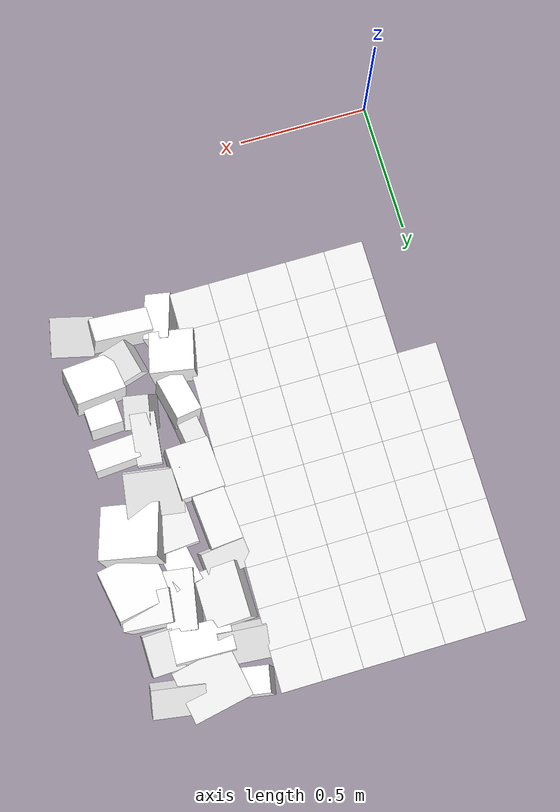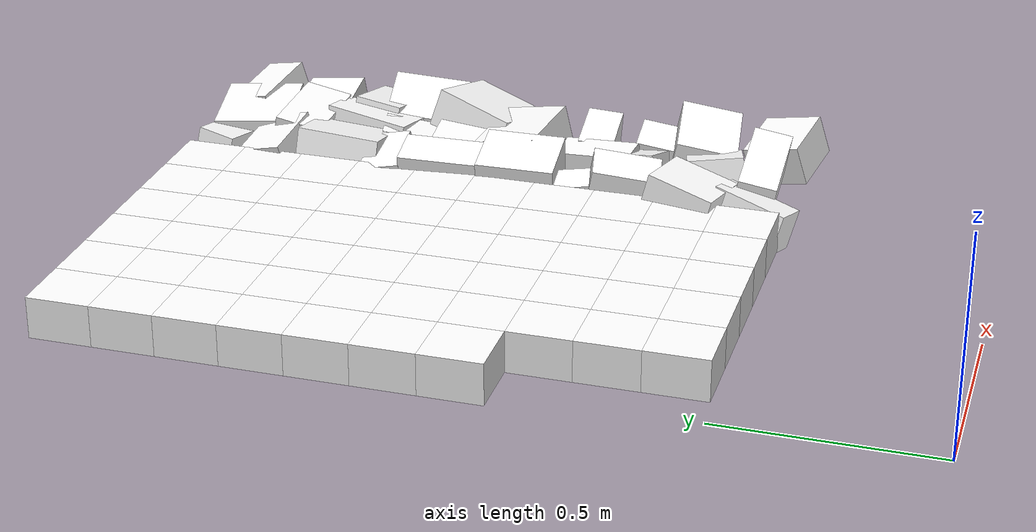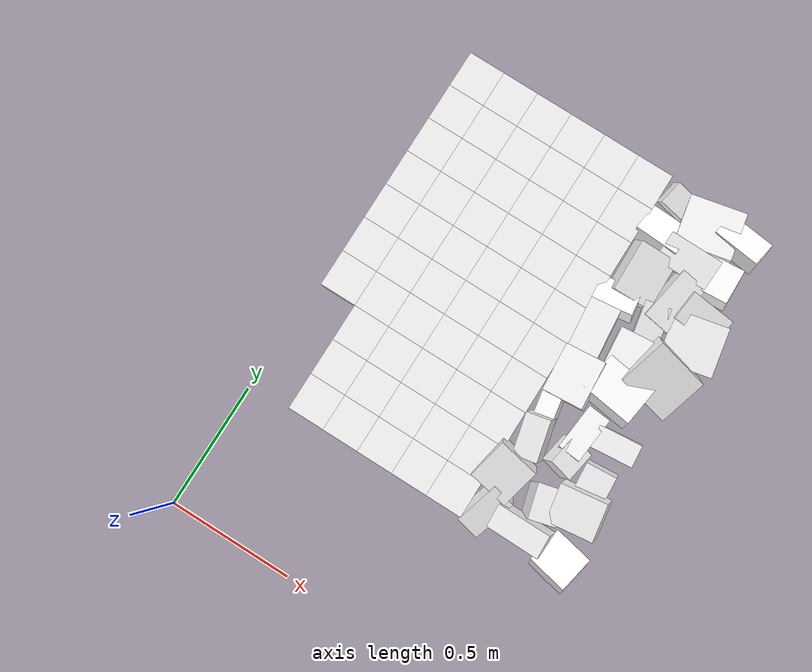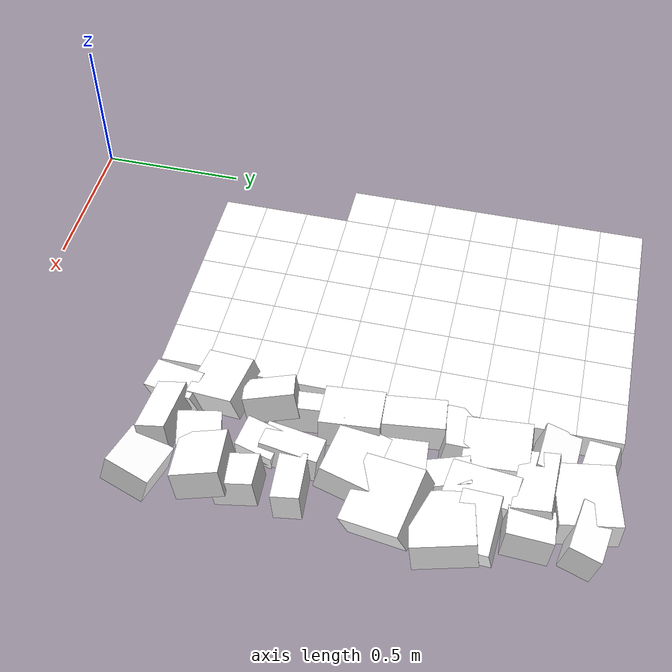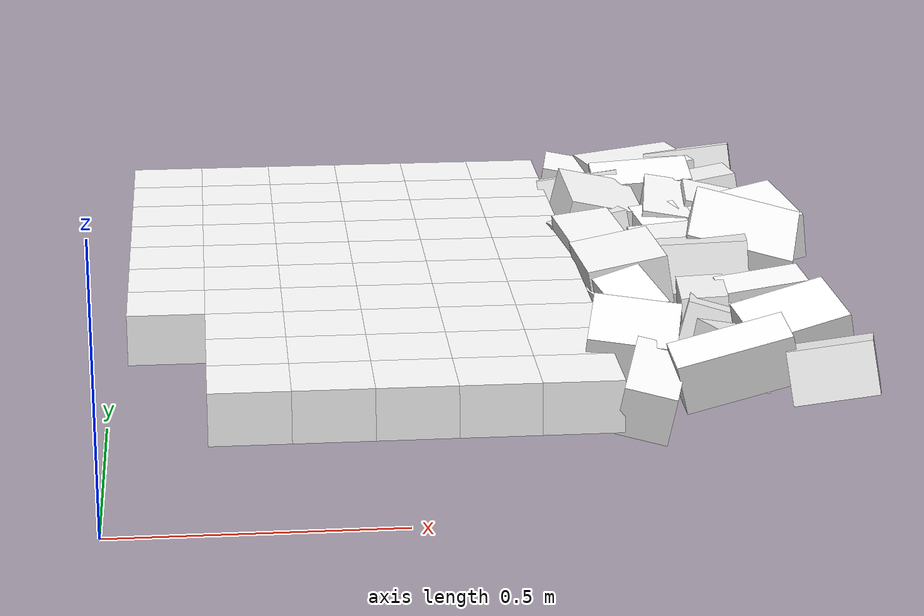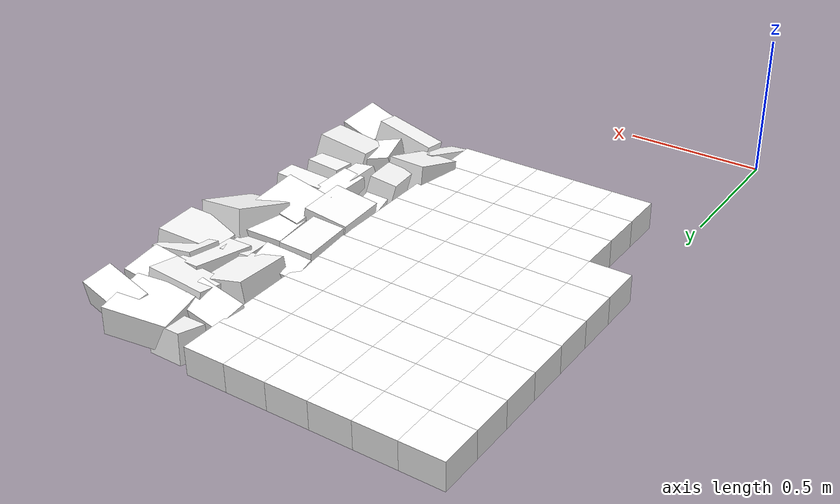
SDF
<sdf version="1.7">
 <world name="default">
  <include><uri>model://sun</uri></include>
  <model name="static_environment">
   <static>true</static>
   <link name="region_15">
    <pose>0.24999999999999956 0.6 0.0 0.0 0.0 0.0</pose>
    <collision name="region_15_collision">
     <geometry><box><size>0.15 0.15 0.1</size></box></geometry>
     <surface><friction><ode><mu>1.0</mu><mu2>1.0</mu2></ode></friction></surface>
    </collision>
    <visual name="region_15_visual">
     <geometry><box><size>0.15 0.15 0.1</size></box></geometry>
     <material><ambient>1.0 1.0 1.0 1.0</ambient><diffuse>1.0 1.0 1.0 1.0</diffuse></material>
    </visual>
   </link>
   <link name="region_16">
    <pose>0.39999999999999947 0.6 0.0 0.0 0.0 0.0</pose>
    <collision name="region_16_collision">
     <geometry><box><size>0.15 0.15 0.1</size></box></geometry>
     <surface><friction><ode><mu>1.0</mu><mu2>1.0</mu2></ode></friction></surface>
    </collision>
    <visual name="region_16_visual">
     <geometry><box><size>0.15 0.15 0.1</size></box></geometry>
     <material><ambient>1.0 1.0 1.0 1.0</ambient><diffuse>1.0 1.0 1.0 1.0</diffuse></material>
    </visual>
   </link>
   <link name="region_17">
    <pose>0.5499999999999994 0.6 0.0 0.0 0.0 0.0</pose>
    <collision name="region_17_collision">
     <geometry><box><size>0.15 0.15 0.1</size></box></geometry>
     <surface><friction><ode><mu>1.0</mu><mu2>1.0</mu2></ode></friction></surface>
    </collision>
    <visual name="region_17_visual">
     <geometry><box><size>0.15 0.15 0.1</size></box></geometry>
     <material><ambient>1.0 1.0 1.0 1.0</ambient><diffuse>1.0 1.0 1.0 1.0</diffuse></material>
    </visual>
   </link>
   <link name="region_18">
    <pose>0.6999999999999993 0.6 0.0 0.0 0.0 0.0</pose>
    <collision name="region_18_collision">
     <geometry><box><size>0.15 0.15 0.1</size></box></geometry>
     <surface><friction><ode><mu>1.0</mu><mu2>1.0</mu2></ode></friction></surface>
    </collision>
    <visual name="region_18_visual">
     <geometry><box><size>0.15 0.15 0.1</size></box></geometry>
     <material><ambient>1.0 1.0 1.0 1.0</ambient><diffuse>1.0 1.0 1.0 1.0</diffuse></material>
    </visual>
   </link>
   <link name="region_19">
    <pose>0.8499999999999992 0.6 0.0 0.0 0.0 0.0</pose>
    <collision name="region_19_collision">
     <geometry><box><size>0.15 0.15 0.1</size></box></geometry>
     <surface><friction><ode><mu>1.0</mu><mu2>1.0</mu2></ode></friction></surface>
    </collision>
    <visual name="region_19_visual">
     <geometry><box><size>0.15 0.15 0.1</size></box></geometry>
     <material><ambient>1.0 1.0 1.0 1.0</ambient><diffuse>1.0 1.0 1.0 1.0</diffuse></material>
    </visual>
   </link>
   <link name="region_35">
    <pose>0.24999999999999956 0.75 0.0 0.0 0.0 0.0</pose>
    <collision name="region_35_collision">
     <geometry><box><size>0.15 0.15 0.1</size></box></geometry>
     <surface><friction><ode><mu>1.0</mu><mu2>1.0</mu2></ode></friction></surface>
    </collision>
    <visual name="region_35_visual">
     <geometry><box><size>0.15 0.15 0.1</size></box></geometry>
     <material><ambient>1.0 1.0 1.0 1.0</ambient><diffuse>1.0 1.0 1.0 1.0</diffuse></material>
    </visual>
   </link>
   <link name="region_36">
    <pose>0.39999999999999947 0.75 0.0 0.0 0.0 0.0</pose>
    <collision name="region_36_collision">
     <geometry><box><size>0.15 0.15 0.1</size></box></geometry>
     <surface><friction><ode><mu>1.0</mu><mu2>1.0</mu2></ode></friction></surface>
    </collision>
    <visual name="region_36_visual">
     <geometry><box><size>0.15 0.15 0.1</size></box></geometry>
     <material><ambient>1.0 1.0 1.0 1.0</ambient><diffuse>1.0 1.0 1.0 1.0</diffuse></material>
    </visual>
   </link>
   <link name="region_37">
    <pose>0.5499999999999994 0.75 0.0 0.0 0.0 0.0</pose>
    <collision name="region_37_collision">
     <geometry><box><size>0.15 0.15 0.1</size></box></geometry>
     <surface><friction><ode><mu>1.0</mu><mu2>1.0</mu2></ode></friction></surface>
    </collision>
    <visual name="region_37_visual">
     <geometry><box><size>0.15 0.15 0.1</size></box></geometry>
     <material><ambient>1.0 1.0 1.0 1.0</ambient><diffuse>1.0 1.0 1.0 1.0</diffuse></material>
    </visual>
   </link>
   <link name="region_38">
    <pose>0.6999999999999993 0.75 0.0 0.0 0.0 0.0</pose>
    <collision name="region_38_collision">
     <geometry><box><size>0.15 0.15 0.1</size></box></geometry>
     <surface><friction><ode><mu>1.0</mu><mu2>1.0</mu2></ode></friction></surface>
    </collision>
    <visual name="region_38_visual">
     <geometry><box><size>0.15 0.15 0.1</size></box></geometry>
     <material><ambient>1.0 1.0 1.0 1.0</ambient><diffuse>1.0 1.0 1.0 1.0</diffuse></material>
    </visual>
   </link>
   <link name="region_39">
    <pose>0.8499999999999992 0.75 0.0 0.0 0.0 0.0</pose>
    <collision name="region_39_collision">
     <geometry><box><size>0.15 0.15 0.1</size></box></geometry>
     <surface><friction><ode><mu>1.0</mu><mu2>1.0</mu2></ode></friction></surface>
    </collision>
    <visual name="region_39_visual">
     <geometry><box><size>0.15 0.15 0.1</size></box></geometry>
     <material><ambient>1.0 1.0 1.0 1.0</ambient><diffuse>1.0 1.0 1.0 1.0</diffuse></material>
    </visual>
   </link>
   <link name="region_55">
    <pose>0.24999999999999956 0.8999999999999999 0.0 0.0 0.0 0.0</pose>
    <collision name="region_55_collision">
     <geometry><box><size>0.15 0.15 0.1</size></box></geometry>
     <surface><friction><ode><mu>1.0</mu><mu2>1.0</mu2></ode></friction></surface>
    </collision>
    <visual name="region_55_visual">
     <geometry><box><size>0.15 0.15 0.1</size></box></geometry>
     <material><ambient>1.0 1.0 1.0 1.0</ambient><diffuse>1.0 1.0 1.0 1.0</diffuse></material>
    </visual>
   </link>
   <link name="region_56">
    <pose>0.39999999999999947 0.8999999999999999 0.0 0.0 0.0 0.0</pose>
    <collision name="region_56_collision">
     <geometry><box><size>0.15 0.15 0.1</size></box></geometry>
     <surface><friction><ode><mu>1.0</mu><mu2>1.0</mu2></ode></friction></surface>
    </collision>
    <visual name="region_56_visual">
     <geometry><box><size>0.15 0.15 0.1</size></box></geometry>
     <material><ambient>1.0 1.0 1.0 1.0</ambient><diffuse>1.0 1.0 1.0 1.0</diffuse></material>
    </visual>
   </link>
   <link name="region_57">
    <pose>0.5499999999999994 0.8999999999999999 0.0 0.0 0.0 0.0</pose>
    <collision name="region_57_collision">
     <geometry><box><size>0.15 0.15 0.1</size></box></geometry>
     <surface><friction><ode><mu>1.0</mu><mu2>1.0</mu2></ode></friction></surface>
    </collision>
    <visual name="region_57_visual">
     <geometry><box><size>0.15 0.15 0.1</size></box></geometry>
     <material><ambient>1.0 1.0 1.0 1.0</ambient><diffuse>1.0 1.0 1.0 1.0</diffuse></material>
    </visual>
   </link>
   <link name="region_58">
    <pose>0.6999999999999993 0.8999999999999999 0.0 0.0 0.0 0.0</pose>
    <collision name="region_58_collision">
     <geometry><box><size>0.15 0.15 0.1</size></box></geometry>
     <surface><friction><ode><mu>1.0</mu><mu2>1.0</mu2></ode></friction></surface>
    </collision>
    <visual name="region_58_visual">
     <geometry><box><size>0.15 0.15 0.1</size></box></geometry>
     <material><ambient>1.0 1.0 1.0 1.0</ambient><diffuse>1.0 1.0 1.0 1.0</diffuse></material>
    </visual>
   </link>
   <link name="region_59">
    <pose>0.8499999999999992 0.8999999999999999 0.0 0.0 0.0 0.0</pose>
    <collision name="region_59_collision">
     <geometry><box><size>0.15 0.15 0.1</size></box></geometry>
     <surface><friction><ode><mu>1.0</mu><mu2>1.0</mu2></ode></friction></surface>
    </collision>
    <visual name="region_59_visual">
     <geometry><box><size>0.15 0.15 0.1</size></box></geometry>
     <material><ambient>1.0 1.0 1.0 1.0</ambient><diffuse>1.0 1.0 1.0 1.0</diffuse></material>
    </visual>
   </link>
   <link name="region_74">
    <pose>0.09999999999999964 1.0499999999999998 0.0 0.0 0.0 0.0</pose>
    <collision name="region_74_collision">
     <geometry><box><size>0.15 0.15 0.1</size></box></geometry>
     <surface><friction><ode><mu>1.0</mu><mu2>1.0</mu2></ode></friction></surface>
    </collision>
    <visual name="region_74_visual">
     <geometry><box><size>0.15 0.15 0.1</size></box></geometry>
     <material><ambient>1.0 1.0 1.0 1.0</ambient><diffuse>1.0 1.0 1.0 1.0</diffuse></material>
    </visual>
   </link>
   <link name="region_75">
    <pose>0.24999999999999956 1.0499999999999998 0.0 0.0 0.0 0.0</pose>
    <collision name="region_75_collision">
     <geometry><box><size>0.15 0.15 0.1</size></box></geometry>
     <surface><friction><ode><mu>1.0</mu><mu2>1.0</mu2></ode></friction></surface>
    </collision>
    <visual name="region_75_visual">
     <geometry><box><size>0.15 0.15 0.1</size></box></geometry>
     <material><ambient>1.0 1.0 1.0 1.0</ambient><diffuse>1.0 1.0 1.0 1.0</diffuse></material>
    </visual>
   </link>
   <link name="region_76">
    <pose>0.39999999999999947 1.0499999999999998 0.0 0.0 0.0 0.0</pose>
    <collision name="region_76_collision">
     <geometry><box><size>0.15 0.15 0.1</size></box></geometry>
     <surface><friction><ode><mu>1.0</mu><mu2>1.0</mu2></ode></friction></surface>
    </collision>
    <visual name="region_76_visual">
     <geometry><box><size>0.15 0.15 0.1</size></box></geometry>
     <material><ambient>1.0 1.0 1.0 1.0</ambient><diffuse>1.0 1.0 1.0 1.0</diffuse></material>
    </visual>
   </link>
   <link name="region_77">
    <pose>0.5499999999999994 1.0499999999999998 0.0 0.0 0.0 0.0</pose>
    <collision name="region_77_collision">
     <geometry><box><size>0.15 0.15 0.1</size></box></geometry>
     <surface><friction><ode><mu>1.0</mu><mu2>1.0</mu2></ode></friction></surface>
    </collision>
    <visual name="region_77_visual">
     <geometry><box><size>0.15 0.15 0.1</size></box></geometry>
     <material><ambient>1.0 1.0 1.0 1.0</ambient><diffuse>1.0 1.0 1.0 1.0</diffuse></material>
    </visual>
   </link>
   <link name="region_78">
    <pose>0.6999999999999993 1.0499999999999998 0.0 0.0 0.0 0.0</pose>
    <collision name="region_78_collision">
     <geometry><box><size>0.15 0.15 0.1</size></box></geometry>
     <surface><friction><ode><mu>1.0</mu><mu2>1.0</mu2></ode></friction></surface>
    </collision>
    <visual name="region_78_visual">
     <geometry><box><size>0.15 0.15 0.1</size></box></geometry>
     <material><ambient>1.0 1.0 1.0 1.0</ambient><diffuse>1.0 1.0 1.0 1.0</diffuse></material>
    </visual>
   </link>
   <link name="region_79">
    <pose>0.8499999999999992 1.0499999999999998 0.0 0.0 0.0 0.0</pose>
    <collision name="region_79_collision">
     <geometry><box><size>0.15 0.15 0.1</size></box></geometry>
     <surface><friction><ode><mu>1.0</mu><mu2>1.0</mu2></ode></friction></surface>
    </collision>
    <visual name="region_79_visual">
     <geometry><box><size>0.15 0.15 0.1</size></box></geometry>
     <material><ambient>1.0 1.0 1.0 1.0</ambient><diffuse>1.0 1.0 1.0 1.0</diffuse></material>
    </visual>
   </link>
   <link name="region_94">
    <pose>0.09999999999999964 1.2 0.0 0.0 0.0 0.0</pose>
    <collision name="region_94_collision">
     <geometry><box><size>0.15 0.15 0.1</size></box></geometry>
     <surface><friction><ode><mu>1.0</mu><mu2>1.0</mu2></ode></friction></surface>
    </collision>
    <visual name="region_94_visual">
     <geometry><box><size>0.15 0.15 0.1</size></box></geometry>
     <material><ambient>1.0 1.0 1.0 1.0</ambient><diffuse>1.0 1.0 1.0 1.0</diffuse></material>
    </visual>
   </link>
   <link name="region_95">
    <pose>0.24999999999999956 1.2 0.0 0.0 0.0 0.0</pose>
    <collision name="region_95_collision">
     <geometry><box><size>0.15 0.15 0.1</size></box></geometry>
     <surface><friction><ode><mu>1.0</mu><mu2>1.0</mu2></ode></friction></surface>
    </collision>
    <visual name="region_95_visual">
     <geometry><box><size>0.15 0.15 0.1</size></box></geometry>
     <material><ambient>1.0 1.0 1.0 1.0</ambient><diffuse>1.0 1.0 1.0 1.0</diffuse></material>
    </visual>
   </link>
   <link name="region_96">
    <pose>0.39999999999999947 1.2 0.0 0.0 0.0 0.0</pose>
    <collision name="region_96_collision">
     <geometry><box><size>0.15 0.15 0.1</size></box></geometry>
     <surface><friction><ode><mu>1.0</mu><mu2>1.0</mu2></ode></friction></surface>
    </collision>
    <visual name="region_96_visual">
     <geometry><box><size>0.15 0.15 0.1</size></box></geometry>
     <material><ambient>1.0 1.0 1.0 1.0</ambient><diffuse>1.0 1.0 1.0 1.0</diffuse></material>
    </visual>
   </link>
   <link name="region_97">
    <pose>0.5499999999999994 1.2 0.0 0.0 0.0 0.0</pose>
    <collision name="region_97_collision">
     <geometry><box><size>0.15 0.15 0.1</size></box></geometry>
     <surface><friction><ode><mu>1.0</mu><mu2>1.0</mu2></ode></friction></surface>
    </collision>
    <visual name="region_97_visual">
     <geometry><box><size>0.15 0.15 0.1</size></box></geometry>
     <material><ambient>1.0 1.0 1.0 1.0</ambient><diffuse>1.0 1.0 1.0 1.0</diffuse></material>
    </visual>
   </link>
   <link name="region_98">
    <pose>0.6999999999999993 1.2 0.0 0.0 0.0 0.0</pose>
    <collision name="region_98_collision">
     <geometry><box><size>0.15 0.15 0.1</size></box></geometry>
     <surface><friction><ode><mu>1.0</mu><mu2>1.0</mu2></ode></friction></surface>
    </collision>
    <visual name="region_98_visual">
     <geometry><box><size>0.15 0.15 0.1</size></box></geometry>
     <material><ambient>1.0 1.0 1.0 1.0</ambient><diffuse>1.0 1.0 1.0 1.0</diffuse></material>
    </visual>
   </link>
   <link name="region_99">
    <pose>0.8499999999999992 1.2 0.0 0.0 0.0 0.0</pose>
    <collision name="region_99_collision">
     <geometry><box><size>0.15 0.15 0.1</size></box></geometry>
     <surface><friction><ode><mu>1.0</mu><mu2>1.0</mu2></ode></friction></surface>
    </collision>
    <visual name="region_99_visual">
     <geometry><box><size>0.15 0.15 0.1</size></box></geometry>
     <material><ambient>1.0 1.0 1.0 1.0</ambient><diffuse>1.0 1.0 1.0 1.0</diffuse></material>
    </visual>
   </link>
   <link name="region_114">
    <pose>0.09999999999999964 1.35 0.0 0.0 0.0 0.0</pose>
    <collision name="region_114_collision">
     <geometry><box><size>0.15 0.15 0.1</size></box></geometry>
     <surface><friction><ode><mu>1.0</mu><mu2>1.0</mu2></ode></friction></surface>
    </collision>
    <visual name="region_114_visual">
     <geometry><box><size>0.15 0.15 0.1</size></box></geometry>
     <material><ambient>1.0 1.0 1.0 1.0</ambient><diffuse>1.0 1.0 1.0 1.0</diffuse></material>
    </visual>
   </link>
   <link name="region_115">
    <pose>0.24999999999999956 1.35 0.0 0.0 0.0 0.0</pose>
    <collision name="region_115_collision">
     <geometry><box><size>0.15 0.15 0.1</size></box></geometry>
     <surface><friction><ode><mu>1.0</mu><mu2>1.0</mu2></ode></friction></surface>
    </collision>
    <visual name="region_115_visual">
     <geometry><box><size>0.15 0.15 0.1</size></box></geometry>
     <material><ambient>1.0 1.0 1.0 1.0</ambient><diffuse>1.0 1.0 1.0 1.0</diffuse></material>
    </visual>
   </link>
   <link name="region_116">
    <pose>0.39999999999999947 1.35 0.0 0.0 0.0 0.0</pose>
    <collision name="region_116_collision">
     <geometry><box><size>0.15 0.15 0.1</size></box></geometry>
     <surface><friction><ode><mu>1.0</mu><mu2>1.0</mu2></ode></friction></surface>
    </collision>
    <visual name="region_116_visual">
     <geometry><box><size>0.15 0.15 0.1</size></box></geometry>
     <material><ambient>1.0 1.0 1.0 1.0</ambient><diffuse>1.0 1.0 1.0 1.0</diffuse></material>
    </visual>
   </link>
   <link name="region_117">
    <pose>0.5499999999999994 1.35 0.0 0.0 0.0 0.0</pose>
    <collision name="region_117_collision">
     <geometry><box><size>0.15 0.15 0.1</size></box></geometry>
     <surface><friction><ode><mu>1.0</mu><mu2>1.0</mu2></ode></friction></surface>
    </collision>
    <visual name="region_117_visual">
     <geometry><box><size>0.15 0.15 0.1</size></box></geometry>
     <material><ambient>1.0 1.0 1.0 1.0</ambient><diffuse>1.0 1.0 1.0 1.0</diffuse></material>
    </visual>
   </link>
   <link name="region_118">
    <pose>0.6999999999999993 1.35 0.0 0.0 0.0 0.0</pose>
    <collision name="region_118_collision">
     <geometry><box><size>0.15 0.15 0.1</size></box></geometry>
     <surface><friction><ode><mu>1.0</mu><mu2>1.0</mu2></ode></friction></surface>
    </collision>
    <visual name="region_118_visual">
     <geometry><box><size>0.15 0.15 0.1</size></box></geometry>
     <material><ambient>1.0 1.0 1.0 1.0</ambient><diffuse>1.0 1.0 1.0 1.0</diffuse></material>
    </visual>
   </link>
   <link name="region_119">
    <pose>0.8499999999999992 1.35 0.0 0.0 0.0 0.0</pose>
    <collision name="region_119_collision">
     <geometry><box><size>0.15 0.15 0.1</size></box></geometry>
     <surface><friction><ode><mu>1.0</mu><mu2>1.0</mu2></ode></friction></surface>
    </collision>
    <visual name="region_119_visual">
     <geometry><box><size>0.15 0.15 0.1</size></box></geometry>
     <material><ambient>1.0 1.0 1.0 1.0</ambient><diffuse>1.0 1.0 1.0 1.0</diffuse></material>
    </visual>
   </link>
   <link name="region_134">
    <pose>0.09999999999999964 1.5 0.0 0.0 0.0 0.0</pose>
    <collision name="region_134_collision">
     <geometry><box><size>0.15 0.15 0.1</size></box></geometry>
     <surface><friction><ode><mu>1.0</mu><mu2>1.0</mu2></ode></friction></surface>
    </collision>
    <visual name="region_134_visual">
     <geometry><box><size>0.15 0.15 0.1</size></box></geometry>
     <material><ambient>1.0 1.0 1.0 1.0</ambient><diffuse>1.0 1.0 1.0 1.0</diffuse></material>
    </visual>
   </link>
   <link name="region_135">
    <pose>0.24999999999999956 1.5 0.0 0.0 0.0 0.0</pose>
    <collision name="region_135_collision">
     <geometry><box><size>0.15 0.15 0.1</size></box></geometry>
     <surface><friction><ode><mu>1.0</mu><mu2>1.0</mu2></ode></friction></surface>
    </collision>
    <visual name="region_135_visual">
     <geometry><box><size>0.15 0.15 0.1</size></box></geometry>
     <material><ambient>1.0 1.0 1.0 1.0</ambient><diffuse>1.0 1.0 1.0 1.0</diffuse></material>
    </visual>
   </link>
   <link name="region_136">
    <pose>0.39999999999999947 1.5 0.0 0.0 0.0 0.0</pose>
    <collision name="region_136_collision">
     <geometry><box><size>0.15 0.15 0.1</size></box></geometry>
     <surface><friction><ode><mu>1.0</mu><mu2>1.0</mu2></ode></friction></surface>
    </collision>
    <visual name="region_136_visual">
     <geometry><box><size>0.15 0.15 0.1</size></box></geometry>
     <material><ambient>1.0 1.0 1.0 1.0</ambient><diffuse>1.0 1.0 1.0 1.0</diffuse></material>
    </visual>
   </link>
   <link name="region_137">
    <pose>0.5499999999999994 1.5 0.0 0.0 0.0 0.0</pose>
    <collision name="region_137_collision">
     <geometry><box><size>0.15 0.15 0.1</size></box></geometry>
     <surface><friction><ode><mu>1.0</mu><mu2>1.0</mu2></ode></friction></surface>
    </collision>
    <visual name="region_137_visual">
     <geometry><box><size>0.15 0.15 0.1</size></box></geometry>
     <material><ambient>1.0 1.0 1.0 1.0</ambient><diffuse>1.0 1.0 1.0 1.0</diffuse></material>
    </visual>
   </link>
   <link name="region_138">
    <pose>0.6999999999999993 1.5 0.0 0.0 0.0 0.0</pose>
    <collision name="region_138_collision">
     <geometry><box><size>0.15 0.15 0.1</size></box></geometry>
     <surface><friction><ode><mu>1.0</mu><mu2>1.0</mu2></ode></friction></surface>
    </collision>
    <visual name="region_138_visual">
     <geometry><box><size>0.15 0.15 0.1</size></box></geometry>
     <material><ambient>1.0 1.0 1.0 1.0</ambient><diffuse>1.0 1.0 1.0 1.0</diffuse></material>
    </visual>
   </link>
   <link name="region_139">
    <pose>0.8499999999999992 1.5 0.0 0.0 0.0 0.0</pose>
    <collision name="region_139_collision">
     <geometry><box><size>0.15 0.15 0.1</size></box></geometry>
     <surface><friction><ode><mu>1.0</mu><mu2>1.0</mu2></ode></friction></surface>
    </collision>
    <visual name="region_139_visual">
     <geometry><box><size>0.15 0.15 0.1</size></box></geometry>
     <material><ambient>1.0 1.0 1.0 1.0</ambient><diffuse>1.0 1.0 1.0 1.0</diffuse></material>
    </visual>
   </link>
   <link name="region_154">
    <pose>0.09999999999999964 1.65 0.0 0.0 0.0 0.0</pose>
    <collision name="region_154_collision">
     <geometry><box><size>0.15 0.15 0.1</size></box></geometry>
     <surface><friction><ode><mu>1.0</mu><mu2>1.0</mu2></ode></friction></surface>
    </collision>
    <visual name="region_154_visual">
     <geometry><box><size>0.15 0.15 0.1</size></box></geometry>
     <material><ambient>1.0 1.0 1.0 1.0</ambient><diffuse>1.0 1.0 1.0 1.0</diffuse></material>
    </visual>
   </link>
   <link name="region_155">
    <pose>0.24999999999999956 1.65 0.0 0.0 0.0 0.0</pose>
    <collision name="region_155_collision">
     <geometry><box><size>0.15 0.15 0.1</size></box></geometry>
     <surface><friction><ode><mu>1.0</mu><mu2>1.0</mu2></ode></friction></surface>
    </collision>
    <visual name="region_155_visual">
     <geometry><box><size>0.15 0.15 0.1</size></box></geometry>
     <material><ambient>1.0 1.0 1.0 1.0</ambient><diffuse>1.0 1.0 1.0 1.0</diffuse></material>
    </visual>
   </link>
   <link name="region_156">
    <pose>0.39999999999999947 1.65 0.0 0.0 0.0 0.0</pose>
    <collision name="region_156_collision">
     <geometry><box><size>0.15 0.15 0.1</size></box></geometry>
     <surface><friction><ode><mu>1.0</mu><mu2>1.0</mu2></ode></friction></surface>
    </collision>
    <visual name="region_156_visual">
     <geometry><box><size>0.15 0.15 0.1</size></box></geometry>
     <material><ambient>1.0 1.0 1.0 1.0</ambient><diffuse>1.0 1.0 1.0 1.0</diffuse></material>
    </visual>
   </link>
   <link name="region_157">
    <pose>0.5499999999999994 1.65 0.0 0.0 0.0 0.0</pose>
    <collision name="region_157_collision">
     <geometry><box><size>0.15 0.15 0.1</size></box></geometry>
     <surface><friction><ode><mu>1.0</mu><mu2>1.0</mu2></ode></friction></surface>
    </collision>
    <visual name="region_157_visual">
     <geometry><box><size>0.15 0.15 0.1</size></box></geometry>
     <material><ambient>1.0 1.0 1.0 1.0</ambient><diffuse>1.0 1.0 1.0 1.0</diffuse></material>
    </visual>
   </link>
   <link name="region_158">
    <pose>0.6999999999999993 1.65 0.0 0.0 0.0 0.0</pose>
    <collision name="region_158_collision">
     <geometry><box><size>0.15 0.15 0.1</size></box></geometry>
     <surface><friction><ode><mu>1.0</mu><mu2>1.0</mu2></ode></friction></surface>
    </collision>
    <visual name="region_158_visual">
     <geometry><box><size>0.15 0.15 0.1</size></box></geometry>
     <material><ambient>1.0 1.0 1.0 1.0</ambient><diffuse>1.0 1.0 1.0 1.0</diffuse></material>
    </visual>
   </link>
   <link name="region_159">
    <pose>0.8499999999999992 1.65 0.0 0.0 0.0 0.0</pose>
    <collision name="region_159_collision">
     <geometry><box><size>0.15 0.15 0.1</size></box></geometry>
     <surface><friction><ode><mu>1.0</mu><mu2>1.0</mu2></ode></friction></surface>
    </collision>
    <visual name="region_159_visual">
     <geometry><box><size>0.15 0.15 0.1</size></box></geometry>
     <material><ambient>1.0 1.0 1.0 1.0</ambient><diffuse>1.0 1.0 1.0 1.0</diffuse></material>
    </visual>
   </link>
   <link name="region_174">
    <pose>0.09999999999999964 1.7999999999999998 0.0 0.0 0.0 0.0</pose>
    <collision name="region_174_collision">
     <geometry><box><size>0.15 0.15 0.1</size></box></geometry>
     <surface><friction><ode><mu>1.0</mu><mu2>1.0</mu2></ode></friction></surface>
    </collision>
    <visual name="region_174_visual">
     <geometry><box><size>0.15 0.15 0.1</size></box></geometry>
     <material><ambient>1.0 1.0 1.0 1.0</ambient><diffuse>1.0 1.0 1.0 1.0</diffuse></material>
    </visual>
   </link>
   <link name="region_175">
    <pose>0.24999999999999956 1.7999999999999998 0.0 0.0 0.0 0.0</pose>
    <collision name="region_175_collision">
     <geometry><box><size>0.15 0.15 0.1</size></box></geometry>
     <surface><friction><ode><mu>1.0</mu><mu2>1.0</mu2></ode></friction></surface>
    </collision>
    <visual name="region_175_visual">
     <geometry><box><size>0.15 0.15 0.1</size></box></geometry>
     <material><ambient>1.0 1.0 1.0 1.0</ambient><diffuse>1.0 1.0 1.0 1.0</diffuse></material>
    </visual>
   </link>
   <link name="region_176">
    <pose>0.39999999999999947 1.7999999999999998 0.0 0.0 0.0 0.0</pose>
    <collision name="region_176_collision">
     <geometry><box><size>0.15 0.15 0.1</size></box></geometry>
     <surface><friction><ode><mu>1.0</mu><mu2>1.0</mu2></ode></friction></surface>
    </collision>
    <visual name="region_176_visual">
     <geometry><box><size>0.15 0.15 0.1</size></box></geometry>
     <material><ambient>1.0 1.0 1.0 1.0</ambient><diffuse>1.0 1.0 1.0 1.0</diffuse></material>
    </visual>
   </link>
   <link name="region_177">
    <pose>0.5499999999999994 1.7999999999999998 0.0 0.0 0.0 0.0</pose>
    <collision name="region_177_collision">
     <geometry><box><size>0.15 0.15 0.1</size></box></geometry>
     <surface><friction><ode><mu>1.0</mu><mu2>1.0</mu2></ode></friction></surface>
    </collision>
    <visual name="region_177_visual">
     <geometry><box><size>0.15 0.15 0.1</size></box></geometry>
     <material><ambient>1.0 1.0 1.0 1.0</ambient><diffuse>1.0 1.0 1.0 1.0</diffuse></material>
    </visual>
   </link>
   <link name="region_178">
    <pose>0.6999999999999993 1.7999999999999998 0.0 0.0 0.0 0.0</pose>
    <collision name="region_178_collision">
     <geometry><box><size>0.15 0.15 0.1</size></box></geometry>
     <surface><friction><ode><mu>1.0</mu><mu2>1.0</mu2></ode></friction></surface>
    </collision>
    <visual name="region_178_visual">
     <geometry><box><size>0.15 0.15 0.1</size></box></geometry>
     <material><ambient>1.0 1.0 1.0 1.0</ambient><diffuse>1.0 1.0 1.0 1.0</diffuse></material>
    </visual>
   </link>
   <link name="region_179">
    <pose>0.8499999999999992 1.7999999999999998 0.0 0.0 0.0 0.0</pose>
    <collision name="region_179_collision">
     <geometry><box><size>0.15 0.15 0.1</size></box></geometry>
     <surface><friction><ode><mu>1.0</mu><mu2>1.0</mu2></ode></friction></surface>
    </collision>
    <visual name="region_179_visual">
     <geometry><box><size>0.15 0.15 0.1</size></box></geometry>
     <material><ambient>1.0 1.0 1.0 1.0</ambient><diffuse>1.0 1.0 1.0 1.0</diffuse></material>
    </visual>
   </link>
   <link name="region_194">
    <pose>0.09999999999999964 1.9499999999999997 0.0 0.0 0.0 0.0</pose>
    <collision name="region_194_collision">
     <geometry><box><size>0.15 0.15 0.1</size></box></geometry>
     <surface><friction><ode><mu>1.0</mu><mu2>1.0</mu2></ode></friction></surface>
    </collision>
    <visual name="region_194_visual">
     <geometry><box><size>0.15 0.15 0.1</size></box></geometry>
     <material><ambient>1.0 1.0 1.0 1.0</ambient><diffuse>1.0 1.0 1.0 1.0</diffuse></material>
    </visual>
   </link>
   <link name="region_195">
    <pose>0.24999999999999956 1.9499999999999997 0.0 0.0 0.0 0.0</pose>
    <collision name="region_195_collision">
     <geometry><box><size>0.15 0.15 0.1</size></box></geometry>
     <surface><friction><ode><mu>1.0</mu><mu2>1.0</mu2></ode></friction></surface>
    </collision>
    <visual name="region_195_visual">
     <geometry><box><size>0.15 0.15 0.1</size></box></geometry>
     <material><ambient>1.0 1.0 1.0 1.0</ambient><diffuse>1.0 1.0 1.0 1.0</diffuse></material>
    </visual>
   </link>
   <link name="region_196">
    <pose>0.39999999999999947 1.9499999999999997 0.0 0.0 0.0 0.0</pose>
    <collision name="region_196_collision">
     <geometry><box><size>0.15 0.15 0.1</size></box></geometry>
     <surface><friction><ode><mu>1.0</mu><mu2>1.0</mu2></ode></friction></surface>
    </collision>
    <visual name="region_196_visual">
     <geometry><box><size>0.15 0.15 0.1</size></box></geometry>
     <material><ambient>1.0 1.0 1.0 1.0</ambient><diffuse>1.0 1.0 1.0 1.0</diffuse></material>
    </visual>
   </link>
   <link name="region_197">
    <pose>0.5499999999999994 1.9499999999999997 0.0 0.0 0.0 0.0</pose>
    <collision name="region_197_collision">
     <geometry><box><size>0.15 0.15 0.1</size></box></geometry>
     <surface><friction><ode><mu>1.0</mu><mu2>1.0</mu2></ode></friction></surface>
    </collision>
    <visual name="region_197_visual">
     <geometry><box><size>0.15 0.15 0.1</size></box></geometry>
     <material><ambient>1.0 1.0 1.0 1.0</ambient><diffuse>1.0 1.0 1.0 1.0</diffuse></material>
    </visual>
   </link>
   <link name="region_198">
    <pose>0.6999999999999993 1.9499999999999997 0.0 0.0 0.0 0.0</pose>
    <collision name="region_198_collision">
     <geometry><box><size>0.15 0.15 0.1</size></box></geometry>
     <surface><friction><ode><mu>1.0</mu><mu2>1.0</mu2></ode></friction></surface>
    </collision>
    <visual name="region_198_visual">
     <geometry><box><size>0.15 0.15 0.1</size></box></geometry>
     <material><ambient>1.0 1.0 1.0 1.0</ambient><diffuse>1.0 1.0 1.0 1.0</diffuse></material>
    </visual>
   </link>
   <link name="region_199">
    <pose>0.8499999999999992 1.9499999999999997 0.0 0.0 0.0 0.0</pose>
    <collision name="region_199_collision">
     <geometry><box><size>0.15 0.15 0.1</size></box></geometry>
     <surface><friction><ode><mu>1.0</mu><mu2>1.0</mu2></ode></friction></surface>
    </collision>
    <visual name="region_199_visual">
     <geometry><box><size>0.15 0.15 0.1</size></box></geometry>
     <material><ambient>1.0 1.0 1.0 1.0</ambient><diffuse>1.0 1.0 1.0 1.0</diffuse></material>
    </visual>
   </link>
   <link name="region_400">
    <pose>0.9857989009111079 0.6020243636028179 0.0007287481242709837 0.20937350404994248 0.20035742705850612 -0.2332892861868277</pose>
    <collision name="region_400_collision">
     <geometry><box><size>0.09812442635695086 0.18600745447731074 0.1</size></box></geometry>
     <surface><friction><ode><mu>1.0</mu><mu2>1.0</mu2></ode></friction></surface>
    </collision>
    <visual name="region_400_visual">
     <geometry><box><size>0.09812442635695086 0.18600745447731074 0.1</size></box></geometry>
     <material><ambient>1.0 1.0 1.0 1.0</ambient><diffuse>1.0 1.0 1.0 1.0</diffuse></material>
    </visual>
   </link>
   <link name="region_401">
    <pose>1.1370297011774766 0.6063649910615297 0.04721125680265211 0.17636777055464248 -0.24887038324074323 0.010613013610146438</pose>
    <collision name="region_401_collision">
     <geometry><box><size>0.21854240044126752 0.09558139820341147 0.1</size></box></geometry>
     <surface><friction><ode><mu>1.0</mu><mu2>1.0</mu2></ode></friction></surface>
    </collision>
    <visual name="region_401_visual">
     <geometry><box><size>0.21854240044126752 0.09558139820341147 0.1</size></box></geometry>
     <material><ambient>1.0 1.0 1.0 1.0</ambient><diffuse>1.0 1.0 1.0 1.0</diffuse></material>
    </visual>
   </link>
   <link name="region_402">
    <pose>1.3160880492438651 0.5796430051875342 0.03822802251694394 -0.23959510102396692 -0.18239491081544157 -0.1918634912991551</pose>
    <collision name="region_402_collision">
     <geometry><box><size>0.15780564498968497 0.14780661204940646 0.1</size></box></geometry>
     <surface><friction><ode><mu>1.0</mu><mu2>1.0</mu2></ode></friction></surface>
    </collision>
    <visual name="region_402_visual">
     <geometry><box><size>0.15780564498968497 0.14780661204940646 0.1</size></box></geometry>
     <material><ambient>1.0 1.0 1.0 1.0</ambient><diffuse>1.0 1.0 1.0 1.0</diffuse></material>
    </visual>
   </link>
   <link name="region_420">
    <pose>0.9708012053314747 0.7544659676896242 0.03888397260398108 0.2249410385688751 0.10149108655000566 -0.19189713327608765</pose>
    <collision name="region_420_collision">
     <geometry><box><size>0.16704801815626547 0.167758906910901 0.1</size></box></geometry>
     <surface><friction><ode><mu>1.0</mu><mu2>1.0</mu2></ode></friction></surface>
    </collision>
    <visual name="region_420_visual">
     <geometry><box><size>0.16704801815626547 0.167758906910901 0.1</size></box></geometry>
     <material><ambient>1.0 1.0 1.0 1.0</ambient><diffuse>1.0 1.0 1.0 1.0</diffuse></material>
    </visual>
   </link>
   <link name="region_421">
    <pose>1.1579218928028303 0.7257282152078922 0.019515460471156605 -0.08901620623463669 0.23566264696378902 0.23459118980572063</pose>
    <collision name="region_421_collision">
     <geometry><box><size>0.11199022171846364 0.13784080210763588 0.1</size></box></geometry>
     <surface><friction><ode><mu>1.0</mu><mu2>1.0</mu2></ode></friction></surface>
    </collision>
    <visual name="region_421_visual">
     <geometry><box><size>0.11199022171846364 0.13784080210763588 0.1</size></box></geometry>
     <material><ambient>1.0 1.0 1.0 1.0</ambient><diffuse>1.0 1.0 1.0 1.0</diffuse></material>
    </visual>
   </link>
   <link name="region_422">
    <pose>1.2798687973671345 0.7769628942230984 0.04609129773419422 0.19128535016952536 -0.22448069998746467 0.1374701077173645</pose>
    <collision name="region_422_collision">
     <geometry><box><size>0.1865126952338271 0.15265339425532023 0.1</size></box></geometry>
     <surface><friction><ode><mu>1.0</mu><mu2>1.0</mu2></ode></friction></surface>
    </collision>
    <visual name="region_422_visual">
     <geometry><box><size>0.1865126952338271 0.15265339425532023 0.1</size></box></geometry>
     <material><ambient>1.0 1.0 1.0 1.0</ambient><diffuse>1.0 1.0 1.0 1.0</diffuse></material>
    </visual>
   </link>
   <link name="region_440">
    <pose>0.998692258802973 0.9197174667875498 0.04647127254759825 0.16438255407813995 -0.23661648154048714 0.19513540912126387</pose>
    <collision name="region_440_collision">
     <geometry><box><size>0.09771386688438115 0.1661512127754759 0.1</size></box></geometry>
     <surface><friction><ode><mu>1.0</mu><mu2>1.0</mu2></ode></friction></surface>
    </collision>
    <visual name="region_440_visual">
     <geometry><box><size>0.09771386688438115 0.1661512127754759 0.1</size></box></geometry>
     <material><ambient>1.0 1.0 1.0 1.0</ambient><diffuse>1.0 1.0 1.0 1.0</diffuse></material>
    </visual>
   </link>
   <link name="region_441">
    <pose>1.1426380695676848 0.9190968560476678 0.009902654345980966 -0.16198697651086208 0.24621802649519625 -0.22765062782795448</pose>
    <collision name="region_441_collision">
     <geometry><box><size>0.09964477198536101 0.12509584119083372 0.1</size></box></geometry>
     <surface><friction><ode><mu>1.0</mu><mu2>1.0</mu2></ode></friction></surface>
    </collision>
    <visual name="region_441_visual">
     <geometry><box><size>0.09964477198536101 0.12509584119083372 0.1</size></box></geometry>
     <material><ambient>1.0 1.0 1.0 1.0</ambient><diffuse>1.0 1.0 1.0 1.0</diffuse></material>
    </visual>
   </link>
   <link name="region_442">
    <pose>1.2835157952229381 0.8862361728492871 0.005360886335463733 0.15551033292483352 -0.12700995614709426 0.0669258578618282</pose>
    <collision name="region_442_collision">
     <geometry><box><size>0.12162733286844597 0.13673753567743377 0.1</size></box></geometry>
     <surface><friction><ode><mu>1.0</mu><mu2>1.0</mu2></ode></friction></surface>
    </collision>
    <visual name="region_442_visual">
     <geometry><box><size>0.12162733286844597 0.13673753567743377 0.1</size></box></geometry>
     <material><ambient>1.0 1.0 1.0 1.0</ambient><diffuse>1.0 1.0 1.0 1.0</diffuse></material>
    </visual>
   </link>
   <link name="region_460">
    <pose>0.9912055710190533 1.0323772794222768 0.0001277098239532981 -0.11606835810282551 -0.17881410711330886 0.1872937320240432</pose>
    <collision name="region_460_collision">
     <geometry><box><size>0.07912487320766111 0.1952532175862135 0.1</size></box></geometry>
     <surface><friction><ode><mu>1.0</mu><mu2>1.0</mu2></ode></friction></surface>
    </collision>
    <visual name="region_460_visual">
     <geometry><box><size>0.07912487320766111 0.1952532175862135 0.1</size></box></geometry>
     <material><ambient>1.0 1.0 1.0 1.0</ambient><diffuse>1.0 1.0 1.0 1.0</diffuse></material>
    </visual>
   </link>
   <link name="region_461">
    <pose>1.1510141040689676 1.0223597990537356 0.009957873761660725 -0.07852013135794877 -0.0676410187465109 -0.10146442236078296</pose>
    <collision name="region_461_collision">
     <geometry><box><size>0.09176786287331602 0.1897843092409868 0.1</size></box></geometry>
     <surface><friction><ode><mu>1.0</mu><mu2>1.0</mu2></ode></friction></surface>
    </collision>
    <visual name="region_461_visual">
     <geometry><box><size>0.09176786287331602 0.1897843092409868 0.1</size></box></geometry>
     <material><ambient>1.0 1.0 1.0 1.0</ambient><diffuse>1.0 1.0 1.0 1.0</diffuse></material>
    </visual>
   </link>
   <link name="region_462">
    <pose>1.2749710463635164 1.0523471916288352 0.015482105937231134 0.08581927028295727 -0.10907260584651252 0.08966076294553543</pose>
    <collision name="region_462_collision">
     <geometry><box><size>0.17131033355908235 0.08880746864579687 0.1</size></box></geometry>
     <surface><friction><ode><mu>1.0</mu><mu2>1.0</mu2></ode></friction></surface>
    </collision>
    <visual name="region_462_visual">
     <geometry><box><size>0.17131033355908235 0.08880746864579687 0.1</size></box></geometry>
     <material><ambient>1.0 1.0 1.0 1.0</ambient><diffuse>1.0 1.0 1.0 1.0</diffuse></material>
    </visual>
   </link>
   <link name="region_480">
    <pose>1.0115794801219318 1.1845938672270602 0.04337181446118667 0.024628338945438033 -0.1699687597671135 0.06818522795290038</pose>
    <collision name="region_480_collision">
     <geometry><box><size>0.16149344705779387 0.19265881054812506 0.1</size></box></geometry>
     <surface><friction><ode><mu>1.0</mu><mu2>1.0</mu2></ode></friction></surface>
    </collision>
    <visual name="region_480_visual">
     <geometry><box><size>0.16149344705779387 0.19265881054812506 0.1</size></box></geometry>
     <material><ambient>1.0 1.0 1.0 1.0</ambient><diffuse>1.0 1.0 1.0 1.0</diffuse></material>
    </visual>
   </link>
   <link name="region_481">
    <pose>1.1706168684456224 1.2212151608746598 0.04304514333909992 -0.20754793713760394 -0.07137978301191245 -0.1454258510636373</pose>
    <collision name="region_481_collision">
     <geometry><box><size>0.20699551493959104 0.16304315820753568 0.1</size></box></geometry>
     <surface><friction><ode><mu>1.0</mu><mu2>1.0</mu2></ode></friction></surface>
    </collision>
    <visual name="region_481_visual">
     <geometry><box><size>0.20699551493959104 0.16304315820753568 0.1</size></box></geometry>
     <material><ambient>1.0 1.0 1.0 1.0</ambient><diffuse>1.0 1.0 1.0 1.0</diffuse></material>
    </visual>
   </link>
   <link name="region_500">
    <pose>0.9783665975253051 1.37611927466431 0.03433595619335858 0.0310864900420445 -0.10150280907376857 0.09343989554824855</pose>
    <collision name="region_500_collision">
     <geometry><box><size>0.11932921692746454 0.20142703571815715 0.1</size></box></geometry>
     <surface><friction><ode><mu>1.0</mu><mu2>1.0</mu2></ode></friction></surface>
    </collision>
    <visual name="region_500_visual">
     <geometry><box><size>0.11932921692746454 0.20142703571815715 0.1</size></box></geometry>
     <material><ambient>1.0 1.0 1.0 1.0</ambient><diffuse>1.0 1.0 1.0 1.0</diffuse></material>
    </visual>
   </link>
   <link name="region_501">
    <pose>1.1696533903731399 1.3550307874355443 0.018666315491417652 -0.016663603533165094 -0.0514467344740151 0.08375349267040466</pose>
    <collision name="region_501_collision">
     <geometry><box><size>0.20161368595892606 0.17887339392464108 0.1</size></box></geometry>
     <surface><friction><ode><mu>1.0</mu><mu2>1.0</mu2></ode></friction></surface>
    </collision>
    <visual name="region_501_visual">
     <geometry><box><size>0.20161368595892606 0.17887339392464108 0.1</size></box></geometry>
     <material><ambient>1.0 1.0 1.0 1.0</ambient><diffuse>1.0 1.0 1.0 1.0</diffuse></material>
    </visual>
   </link>
   <link name="region_502">
    <pose>1.2821357288708293 1.3499479940011478 0.04548029405351242 0.24965600401551757 0.2272612636045328 -0.20768158241744744</pose>
    <collision name="region_502_collision">
     <geometry><box><size>0.22092793764216775 0.20185537827672273 0.1</size></box></geometry>
     <surface><friction><ode><mu>1.0</mu><mu2>1.0</mu2></ode></friction></surface>
    </collision>
    <visual name="region_502_visual">
     <geometry><box><size>0.22092793764216775 0.20185537827672273 0.1</size></box></geometry>
     <material><ambient>1.0 1.0 1.0 1.0</ambient><diffuse>1.0 1.0 1.0 1.0</diffuse></material>
    </visual>
   </link>
   <link name="region_520">
    <pose>0.989020355480208 1.5197682802786228 0.014321355418611403 -0.17392881687164574 -0.1461559739329238 0.12717982640836034</pose>
    <collision name="region_520_collision">
     <geometry><box><size>0.16436310916118005 0.10165470052951761 0.1</size></box></geometry>
     <surface><friction><ode><mu>1.0</mu><mu2>1.0</mu2></ode></friction></surface>
    </collision>
    <visual name="region_520_visual">
     <geometry><box><size>0.16436310916118005 0.10165470052951761 0.1</size></box></geometry>
     <material><ambient>1.0 1.0 1.0 1.0</ambient><diffuse>1.0 1.0 1.0 1.0</diffuse></material>
    </visual>
   </link>
   <link name="region_521">
    <pose>1.151948597143615 1.497071556998828 0.00291364979896126 0.1880241035179014 -0.057953172138433984 0.19911685052032463</pose>
    <collision name="region_521_collision">
     <geometry><box><size>0.10134561643521058 0.18906816730512524 0.1</size></box></geometry>
     <surface><friction><ode><mu>1.0</mu><mu2>1.0</mu2></ode></friction></surface>
    </collision>
    <visual name="region_521_visual">
     <geometry><box><size>0.10134561643521058 0.18906816730512524 0.1</size></box></geometry>
     <material><ambient>1.0 1.0 1.0 1.0</ambient><diffuse>1.0 1.0 1.0 1.0</diffuse></material>
    </visual>
   </link>
   <link name="region_522">
    <pose>1.3224401166134614 1.528235851359515 0.022632271510601196 0.11874804715742471 -0.15551488699149757 0.18432407363124576</pose>
    <collision name="region_522_collision">
     <geometry><box><size>0.20797745344703703 0.19619488539034016 0.1</size></box></geometry>
     <surface><friction><ode><mu>1.0</mu><mu2>1.0</mu2></ode></friction></surface>
    </collision>
    <visual name="region_522_visual">
     <geometry><box><size>0.20797745344703703 0.19619488539034016 0.1</size></box></geometry>
     <material><ambient>1.0 1.0 1.0 1.0</ambient><diffuse>1.0 1.0 1.0 1.0</diffuse></material>
    </visual>
   </link>
   <link name="region_540">
    <pose>1.0224037788221598 1.6465412920902418 0.03319754132817317 0.0782525190440791 0.2219908501742885 0.041147477624624895</pose>
    <collision name="region_540_collision">
     <geometry><box><size>0.15912056584782244 0.20657173481870045 0.1</size></box></geometry>
     <surface><friction><ode><mu>1.0</mu><mu2>1.0</mu2></ode></friction></surface>
    </collision>
    <visual name="region_540_visual">
     <geometry><box><size>0.15912056584782244 0.20657173481870045 0.1</size></box></geometry>
     <material><ambient>1.0 1.0 1.0 1.0</ambient><diffuse>1.0 1.0 1.0 1.0</diffuse></material>
    </visual>
   </link>
   <link name="region_541">
    <pose>1.1732020503435852 1.6243815933440042 0.025049218588760754 0.09862361094934724 0.1410521175741823 -0.15213928476134403</pose>
    <collision name="region_541_collision">
     <geometry><box><size>0.11128267354355184 0.21727386595157264 0.1</size></box></geometry>
     <surface><friction><ode><mu>1.0</mu><mu2>1.0</mu2></ode></friction></surface>
    </collision>
    <visual name="region_541_visual">
     <geometry><box><size>0.11128267354355184 0.21727386595157264 0.1</size></box></geometry>
     <material><ambient>1.0 1.0 1.0 1.0</ambient><diffuse>1.0 1.0 1.0 1.0</diffuse></material>
    </visual>
   </link>
   <link name="region_542">
    <pose>1.293265911290332 1.6247085218321433 0.017813880316886445 0.1195137725190904 0.2167940511240608 -0.07364839336683454</pose>
    <collision name="region_542_collision">
     <geometry><box><size>0.1873565274673096 0.12182042776783417 0.1</size></box></geometry>
     <surface><friction><ode><mu>1.0</mu><mu2>1.0</mu2></ode></friction></surface>
    </collision>
    <visual name="region_542_visual">
     <geometry><box><size>0.1873565274673096 0.12182042776783417 0.1</size></box></geometry>
     <material><ambient>1.0 1.0 1.0 1.0</ambient><diffuse>1.0 1.0 1.0 1.0</diffuse></material>
    </visual>
   </link>
   <link name="region_560">
    <pose>1.0099914701927988 1.820262878233967 0.017949939620402457 -0.24645662454059564 -0.1492669802642519 -0.08535767997898053</pose>
    <collision name="region_560_collision">
     <geometry><box><size>0.17738690893603393 0.11780525247197708 0.1</size></box></geometry>
     <surface><friction><ode><mu>1.0</mu><mu2>1.0</mu2></ode></friction></surface>
    </collision>
    <visual name="region_560_visual">
     <geometry><box><size>0.17738690893603393 0.11780525247197708 0.1</size></box></geometry>
     <material><ambient>1.0 1.0 1.0 1.0</ambient><diffuse>1.0 1.0 1.0 1.0</diffuse></material>
    </visual>
   </link>
   <link name="region_561">
    <pose>1.1419422835846191 1.7812018162815249 0.03910673747237241 0.17669890894893364 -0.06341066816809077 -0.028213381763319223</pose>
    <collision name="region_561_collision">
     <geometry><box><size>0.21529562221032936 0.12020713081095363 0.1</size></box></geometry>
     <surface><friction><ode><mu>1.0</mu><mu2>1.0</mu2></ode></friction></surface>
    </collision>
    <visual name="region_561_visual">
     <geometry><box><size>0.21529562221032936 0.12020713081095363 0.1</size></box></geometry>
     <material><ambient>1.0 1.0 1.0 1.0</ambient><diffuse>1.0 1.0 1.0 1.0</diffuse></material>
    </visual>
   </link>
   <link name="region_562">
    <pose>1.286433633196859 1.7725794891123652 0.02932264221515068 -0.10872310491003084 -0.16241050658796635 0.029538680385557847</pose>
    <collision name="region_562_collision">
     <geometry><box><size>0.11971639446762072 0.14452383582103218 0.1</size></box></geometry>
     <surface><friction><ode><mu>1.0</mu><mu2>1.0</mu2></ode></friction></surface>
    </collision>
    <visual name="region_562_visual">
     <geometry><box><size>0.11971639446762072 0.14452383582103218 0.1</size></box></geometry>
     <material><ambient>1.0 1.0 1.0 1.0</ambient><diffuse>1.0 1.0 1.0 1.0</diffuse></material>
    </visual>
   </link>
   <link name="region_580">
    <pose>1.0156014741802553 1.9608260658797776 0.005509397982734749 0.1467077714178613 0.1625147209730744 -0.16289454219592459</pose>
    <collision name="region_580_collision">
     <geometry><box><size>0.14988438791221353 0.09685233144976411 0.1</size></box></geometry>
     <surface><friction><ode><mu>1.0</mu><mu2>1.0</mu2></ode></friction></surface>
    </collision>
    <visual name="region_580_visual">
     <geometry><box><size>0.14988438791221353 0.09685233144976411 0.1</size></box></geometry>
     <material><ambient>1.0 1.0 1.0 1.0</ambient><diffuse>1.0 1.0 1.0 1.0</diffuse></material>
    </visual>
   </link>
   <link name="region_581">
    <pose>1.149337442907044 1.9258694858329424 0.027481381489566466 -0.0385578600382297 -0.0647032116662622 0.19437261799165556</pose>
    <collision name="region_581_collision">
     <geometry><box><size>0.22128001811208883 0.19129539594553027 0.1</size></box></geometry>
     <surface><friction><ode><mu>1.0</mu><mu2>1.0</mu2></ode></friction></surface>
    </collision>
    <visual name="region_581_visual">
     <geometry><box><size>0.22128001811208883 0.19129539594553027 0.1</size></box></geometry>
     <material><ambient>1.0 1.0 1.0 1.0</ambient><diffuse>1.0 1.0 1.0 1.0</diffuse></material>
    </visual>
   </link>
   <link name="region_582">
    <pose>1.2754267071620164 1.9406354957146035 0.04002585521028008 -0.22017778255201315 -0.14591012480841614 -0.16389578794298781</pose>
    <collision name="region_582_collision">
     <geometry><box><size>0.19051599948541342 0.10237562472478162 0.1</size></box></geometry>
     <surface><friction><ode><mu>1.0</mu><mu2>1.0</mu2></ode></friction></surface>
    </collision>
    <visual name="region_582_visual">
     <geometry><box><size>0.19051599948541342 0.10237562472478162 0.1</size></box></geometry>
     <material><ambient>1.0 1.0 1.0 1.0</ambient><diffuse>1.0 1.0 1.0 1.0</diffuse></material>
    </visual>
   </link>
  </model>
 </world>
</sdf>
